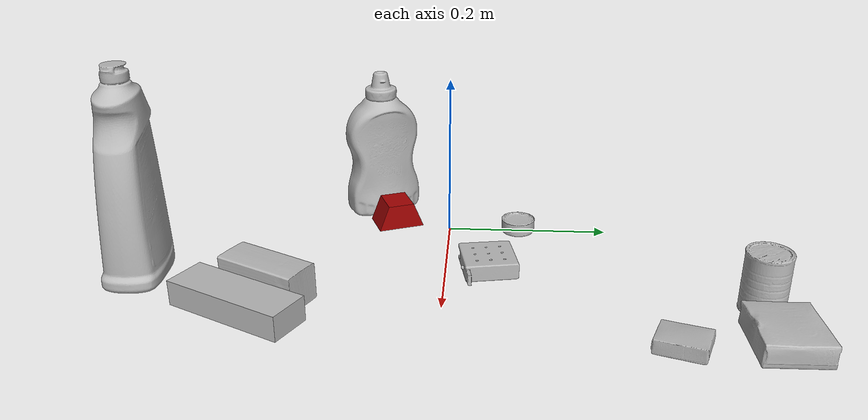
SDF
<sdf version="1.4">
  <world name="default">
    <light name="light1" type="point">
      <pose>0 0 1 0 0 0</pose>
      <diffuse>3 3 3 1</diffuse>
      <specular>3 3 3 1</specular>
    </light>
    <light name="light2" type="point">
      <pose>0 0.5 2 0 0 0</pose>
      <diffuse>1 1 1 1</diffuse>
      <specular>1 1 1 1</specular>
    </light>
    <light name="light3" type="point">
      <pose>0 0.5 2 0 0 0</pose>
      <diffuse>3 3 3 1</diffuse>
      <specular>3 3 3 1</specular>
    </light>
    <scene>
      <ambient>0.7 0.7 0.7</ambient>
    </scene>
    <model name="bottle1">
      <link name="link_bottle1">
        <collision name="default">
          <geometry>
            <mesh>
              <uri>model://mustard_bottle/collision_meshes/collision.obj</uri>
              <scale>1.0 1.0 1.0</scale>
            </mesh>
          </geometry>
          <surface>
            <friction>
              <ode>
                <mu>0.5</mu>
                <mu2>0.5</mu2>
              </ode>
            </friction>
          <contact>
        <ode>
            <max_vel>0</max_vel>
            <min_depth>0.0001</min_depth>
            <kp>1e8</kp>
        </ode>
    </contact></surface>
        </collision>
        <visual name="default">
          <geometry>
            <mesh>
              <uri>model://mustard_bottle/visual_meshes/visual.dae</uri>
              <scale>1.0 1.0 1.0</scale>
            </mesh>
          </geometry>
        </visual>
        <inertial>
          <mass>0.6762011647224426</mass>
          <pose>0.0005032454500906169 -0.00015647402324248105 -0.0174757931381464 0.0004182330054410876 0.0009465793907204819 0.02485376893997312</pose>
          <inertia>
            <ixx>0.001877718</ixx>
            <iyy>0.0016475386</iyy>
            <izz>0.0004948735</izz>
            <ixy>0</ixy>
            <ixz>0</ixz>
            <iyz>0</iyz>
          </inertia>
        </inertial>
      </link>
      <pose>-0.06279249489307404 -0.09450557827949524 0.09615198522806168 1.5319386128092164e-05 1.6896267665616114e-05 0.5040409034152358</pose>
    </model>
    <model name="bottle2">
      <link name="link_bottle2">
        <collision name="default">
          <geometry>
            <mesh>
              <uri>model://bleach_cleanser/collision_meshes/collision.obj</uri>
              <scale>1.0 1.0 1.0</scale>
            </mesh>
          </geometry>
          <surface>
            <friction>
              <ode>
                <mu>0.5</mu>
                <mu2>0.5</mu2>
              </ode>
            </friction>
          <contact>
        <ode>
            <max_vel>0</max_vel>
            <min_depth>0.0001</min_depth>
            <kp>1e8</kp>
        </ode>
    </contact></surface>
        </collision>
        <visual name="default">
          <geometry>
            <mesh>
              <uri>model://bleach_cleanser/visual_meshes/visual.dae</uri>
              <scale>1.0 1.0 1.0</scale>
            </mesh>
          </geometry>
        </visual>
        <inertial>
          <mass>1.3947629928588867</mass>
          <pose>0.00012193183647468686 0.0037838828284293413 -0.02442161738872528 -0.07381670616230765 0.000420115363335565 -0.006875068774372656</pose>
          <inertia>
            <ixx>0.0067885136</ixx>
            <iyy>0.006325901</iyy>
            <izz>0.0011606595</izz>
            <ixy>0</ixy>
            <ixz>0</ixz>
            <iyz>0</iyz>
          </inertia>
        </inertial>
      </link>
      <pose>0.14443999528884888 -0.35707318782806396 0.12578414380550385 -0.00020102309232666342 1.5644025952493248e-05 1.59712222406832</pose>
    </model>
    <model name="toy1">
      <link name="link_toy1">
        <collision name="default">
          <geometry>
            <mesh>
              <uri>model://nine_hole_peg_test/collision_meshes/collision.obj</uri>
              <scale>0.5 0.5 0.5</scale>
            </mesh>
          </geometry>
          <surface>
            <friction>
              <ode>
                <mu>0.5</mu>
                <mu2>0.5</mu2>
              </ode>
            </friction>
          <contact>
        <ode>
            <max_vel>0</max_vel>
            <min_depth>0.0001</min_depth>
            <kp>1e8</kp>
        </ode>
    </contact></surface>
        </collision>
        <visual name="default">
          <geometry>
            <mesh>
              <uri>model://nine_hole_peg_test/visual_meshes/visual.dae</uri>
              <scale>0.5 0.5 0.5</scale>
            </mesh>
          </geometry>
        </visual>
        <inertial>
          <mass>0.11556825786828995</mass>
          <pose>-0.0023086932487785816 -0.004823807626962662 1.3230343029135838e-05 -0.0014666797633517714 0.0007194158879745651 -0.6342419016734399</pose>
          <inertia>
            <ixx>4.5177487e-05</ixx>
            <iyy>4.2181746e-05</iyy>
            <izz>7.9164296e-05</izz>
            <ixy>0</ixy>
            <ixz>0</ixz>
            <iyz>0</iyz>
          </inertia>
        </inertial>
      </link>
      <pose>0.11305758357048035 0.04879982769489288 0.010385499335825443 -1.94533920699555e-09 5.883708309563919e-09 -1.3887451841299585</pose>
    </model>
    <model name="toy2">
      <link name="link_toy2">
        <collision name="default">
          <geometry>
            <mesh>
              <uri>model://prism/collision_meshes/collision.obj</uri>
              <scale>0.5 0.5 0.5</scale>
            </mesh>
          </geometry>
          <surface>
            <friction>
              <ode>
                <mu>0.5</mu>
                <mu2>0.5</mu2>
              </ode>
            </friction>
          <contact>
        <ode>
            <max_vel>0</max_vel>
            <min_depth>0.0001</min_depth>
            <kp>1e8</kp>
        </ode>
    </contact></surface>
        </collision>
        <visual name="default">
          <geometry>
            <mesh>
              <uri>model://prism/visual_meshes/visual.dae</uri>
              <scale>0.5 0.5 0.5</scale>
            </mesh>
          </geometry>
        </visual>
        <inertial>
          <mass>0.033433690667152405</mass>
          <pose>-4.9267986469203606e-05 -2.480786349678965e-07 -0.001693455153144896 0.0 0.00655918030046738 0.0</pose>
          <inertia>
            <ixx>7.543374e-06</ixx>
            <iyy>9.116264e-06</iyy>
            <izz>1.1166334e-05</izz>
            <ixy>0</ixy>
            <ixz>0</ixz>
            <iyz>0</iyz>
          </inertia>
        </inertial>
      </link>
      <pose>-0.016691043972969055 -0.07082495838403702 0.016085000708699226 8.802177131476605e-09 -4.741846305902315e-09 1.9572282836043435</pose>
    </model>
    <model name="can1">
      <link name="link_can1">
        <collision name="default">
          <geometry>
            <mesh>
              <uri>model://master_chef_can/collision_meshes/collision.obj</uri>
              <scale>0.5 0.5 0.5</scale>
            </mesh>
          </geometry>
          <surface>
            <friction>
              <ode>
                <mu>0.5</mu>
                <mu2>0.5</mu2>
              </ode>
            </friction>
          <contact>
        <ode>
            <max_vel>0</max_vel>
            <min_depth>0.0001</min_depth>
            <kp>1e8</kp>
        </ode>
    </contact></surface>
        </collision>
        <visual name="default">
          <geometry>
            <mesh>
              <uri>model://master_chef_can/visual_meshes/visual.dae</uri>
              <scale>0.5 0.5 0.5</scale>
            </mesh>
          </geometry>
        </visual>
        <inertial>
          <mass>0.10766725987195969</mass>
          <pose>-4.661964703700505e-05 1.3926853625889635e-07 -5.079878610558808e-05 -0.0017995160150511523 0.000647916474058074 -0.6102670332280266</pose>
          <inertia>
            <ixx>6.319339e-05</ixx>
            <iyy>6.2728286e-05</iyy>
            <izz>3.491918e-05</izz>
            <ixy>0</ixy>
            <ixz>0</ixz>
            <iyz>0</iyz>
          </inertia>
        </inertial>
      </link>
      <pose>0.18377594649791718 0.3492438793182373 0.03530197963118553 -1.2560255661087403e-06 -1.241420851761675e-06 -0.40962509136760816</pose>
    </model>
    <model name="can2">
      <link name="link_can2">
        <collision name="default">
          <geometry>
            <mesh>
              <uri>model://tuna_fish_can/collision_meshes/collision.obj</uri>
              <scale>0.5 0.5 0.5</scale>
            </mesh>
          </geometry>
          <surface>
            <friction>
              <ode>
                <mu>0.5</mu>
                <mu2>0.5</mu2>
              </ode>
            </friction>
          <contact>
        <ode>
            <max_vel>0</max_vel>
            <min_depth>0.0001</min_depth>
            <kp>1e8</kp>
        </ode>
    </contact></surface>
        </collision>
        <visual name="default">
          <geometry>
            <mesh>
              <uri>model://tuna_fish_can/visual_meshes/visual.dae</uri>
              <scale>0.5 0.5 0.5</scale>
            </mesh>
          </geometry>
        </visual>
        <inertial>
          <mass>0.02740846574306488</mass>
          <pose>-2.0361561837489717e-05 -7.256384378706571e-06 -0.0005269024986773729 -0.0017944791545750336 0.000171617609773777 0.24054039995463303</pose>
          <inertia>
            <ixx>3.7056664e-06</ixx>
            <iyy>3.6902204e-06</iyy>
            <izz>6.3409243e-06</izz>
            <ixy>0</ixy>
            <ixz>0</ixz>
            <iyz>0</iyz>
          </inertia>
        </inertial>
      </link>
      <pose>0.0001221328420797363 0.08859097957611084 0.008519998751580715 2.707955523786933e-09 5.333526112693471e-09 1.5003907120530595</pose>
    </model>
    <model name="box1">
      <link name="link_box1">
        <collision name="default">
          <geometry>
            <mesh>
              <uri>model://gelatin_box/collision_meshes/collision.obj</uri>
              <scale>1.0 1.0 1.0</scale>
            </mesh>
          </geometry>
          <surface>
            <friction>
              <ode>
                <mu>0.5</mu>
                <mu2>0.5</mu2>
              </ode>
            </friction>
          <contact>
        <ode>
            <max_vel>0</max_vel>
            <min_depth>0.0001</min_depth>
            <kp>1e8</kp>
        </ode>
    </contact></surface>
        </collision>
        <visual name="default">
          <geometry>
            <mesh>
              <uri>model://gelatin_box/visual_meshes/visual.dae</uri>
              <scale>1.0 1.0 1.0</scale>
            </mesh>
          </geometry>
        </visual>
        <inertial>
          <mass>0.1693437397480011</mass>
          <pose>0.0004319618456065655 0.00011156872642459348 -0.00036403213744051754 -0.0010503721973280913 -0.004755817758053359 0.01644055760876268</pose>
          <inertia>
            <ixx>0.00011954286</ixx>
            <iyy>8.538885e-05</iyy>
            <izz>0.0001819709</izz>
            <ixy>0</ixy>
            <ixz>0</ixz>
            <iyz>0</iyz>
          </inertia>
        </inertial>
      </link>
      <pose>0.2548910677433014 0.35300925374031067 0.015168312937021255 0.005597426099557193 -0.007304475083413751 -1.5654515234921782</pose>
    </model>
    <model name="box2">
      <link name="link_box2">
        <collision name="default">
          <geometry>
            <mesh>
              <uri>model://pudding_box/collision_meshes/collision.obj</uri>
              <scale>0.5 0.5 0.5</scale>
            </mesh>
          </geometry>
          <surface>
            <friction>
              <ode>
                <mu>0.5</mu>
                <mu2>0.5</mu2>
              </ode>
            </friction>
          <contact>
        <ode>
            <max_vel>0</max_vel>
            <min_depth>0.0001</min_depth>
            <kp>1e8</kp>
        </ode>
    </contact></surface>
        </collision>
        <visual name="default">
          <geometry>
            <mesh>
              <uri>model://pudding_box/visual_meshes/visual.dae</uri>
              <scale>0.5 0.5 0.5</scale>
            </mesh>
          </geometry>
        </visual>
        <inertial>
          <mass>0.04695427790284157</mass>
          <pose>0.00024474109522998333 0.00040339428232982755 -0.0002594413817860186 0.005213102262859105 -0.0066037982576109796 0.020079825159299278</pose>
          <inertia>
            <ixx>1.3269848e-05</ixx>
            <iyy>8.9280475e-06</iyy>
            <izz>1.95964e-05</izz>
            <ixy>0</ixy>
            <ixz>0</ixz>
            <iyz>0</iyz>
          </inertia>
        </inertial>
      </link>
      <pose>0.267953485250473 0.2475184053182602 0.009862902574241161 0.02234844027001136 -0.011391793185664174 -0.3783757357843201</pose>
    </model>
    <model name="box3">
      <link name="link_box3">
        <collision name="default">
          <geometry>
            <mesh>
              <uri>model://wood_block/collision_meshes/collision.obj</uri>
              <scale>0.5 0.5 0.5</scale>
            </mesh>
          </geometry>
          <surface>
            <friction>
              <ode>
                <mu>0.5</mu>
                <mu2>0.5</mu2>
              </ode>
            </friction>
          <contact>
        <ode>
            <max_vel>0</max_vel>
            <min_depth>0.0001</min_depth>
            <kp>1e8</kp>
        </ode>
    </contact></surface>
        </collision>
        <visual name="default">
          <geometry>
            <mesh>
              <uri>model://wood_block/visual_meshes/visual.dae</uri>
              <scale>0.5 0.5 0.5</scale>
            </mesh>
          </geometry>
        </visual>
        <inertial>
          <mass>0.2591375410556793</mass>
          <pose>-2.9066577553749084e-06 -0.00028540476341731846 0.00013204291462898254 -0.05221026556657302 -0.005192695801982805 -0.006861378038707315</pose>
          <inertia>
            <ixx>8.669131e-05</ixx>
            <iyy>0.00027385785</iyy>
            <izz>0.00027283354</izz>
            <ixy>0</ixy>
            <ixz>0</ixz>
            <iyz>0</iyz>
          </inertia>
        </inertial>
      </link>
      <pose>0.18312157690525055 -0.19629907608032227 0.022527486085891724 -0.01584450935946244 -0.0004009914316686129 -2.037877838466481</pose>
    </model>
    <model name="box4">
      <link name="link_box4">
        <collision name="default">
          <geometry>
            <mesh>
              <uri>model://jenga/collision_meshes/collision.obj</uri>
              <scale>1.0 1.0 1.0</scale>
            </mesh>
          </geometry>
          <surface>
            <friction>
              <ode>
                <mu>0.5</mu>
                <mu2>0.5</mu2>
              </ode>
            </friction>
          <contact>
        <ode>
            <max_vel>0</max_vel>
            <min_depth>0.0001</min_depth>
            <kp>1e8</kp>
        </ode>
    </contact></surface>
        </collision>
        <visual name="default">
          <geometry>
            <mesh>
              <uri>model://jenga/visual_meshes/visual.dae</uri>
              <scale>1.0 1.0 1.0</scale>
            </mesh>
          </geometry>
        </visual>
        <inertial>
          <mass>0.14610815048217773</mass>
          <pose>-2.502855807051674e-07 -0.00010250010382151231 -4.092339804628864e-05 0.0 -7.342155186052628e-07 0.0</pose>
          <inertia>
            <ixx>4.043167e-05</ixx>
            <iyy>0.0002739639</iyy>
            <izz>0.00029247976</izz>
            <ixy>0</ixy>
            <ixz>0</ixz>
            <iyz>0</iyz>
          </inertia>
        </inertial>
      </link>
      <pose>0.2229384481906891 -0.22130198776721954 0.014999995008111 -6.661021528376856e-09 1.0186439259338207e-08 1.102627414972046</pose>
    </model>
  <physics type="ode">
      <max_contacts>50</max_contacts>
      <ode>
        <solver>
          <type>quick</type>
          <iters>75</iters>
        </solver>
        <constraints>
          <contact_max_correcting_vel>0</contact_max_correcting_vel>
          <contact_surface_layer>0</contact_surface_layer>
        </constraints>
      </ode>
    </physics></world>
</sdf>
